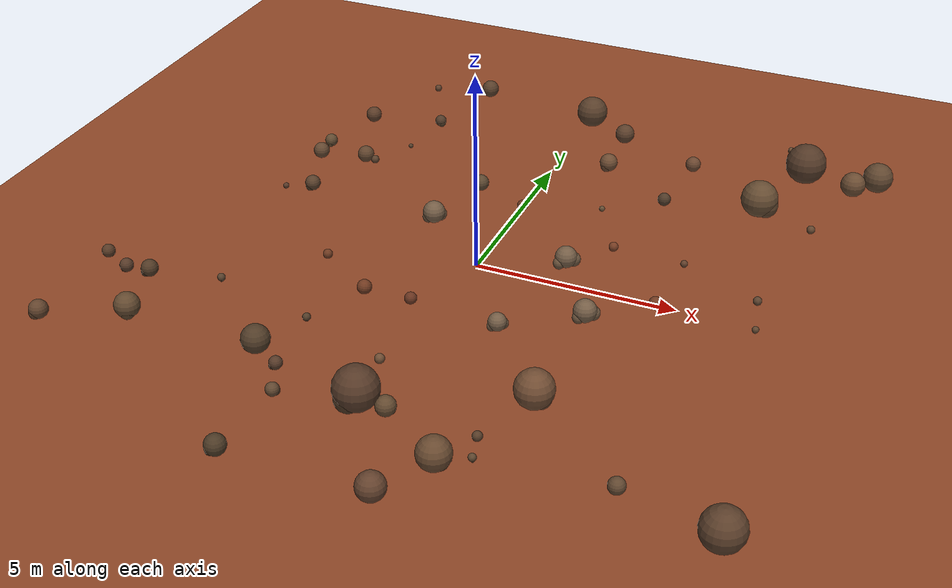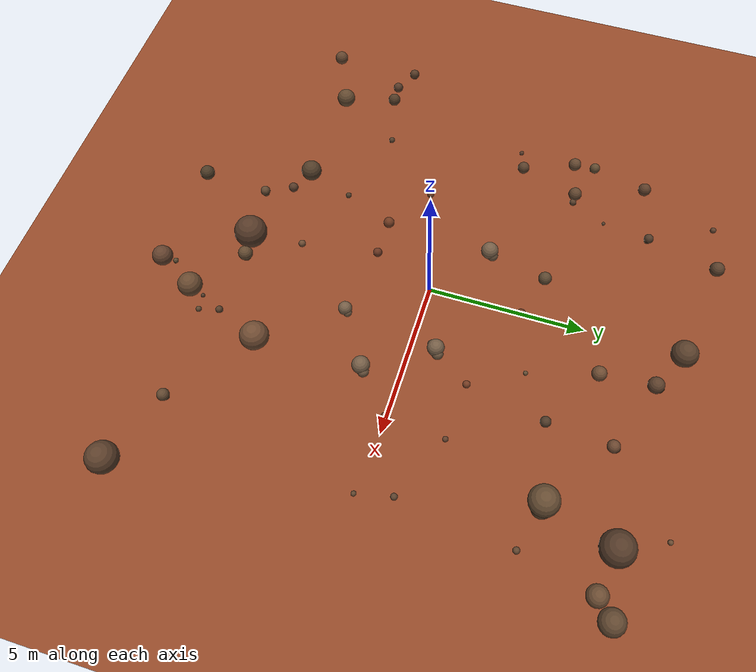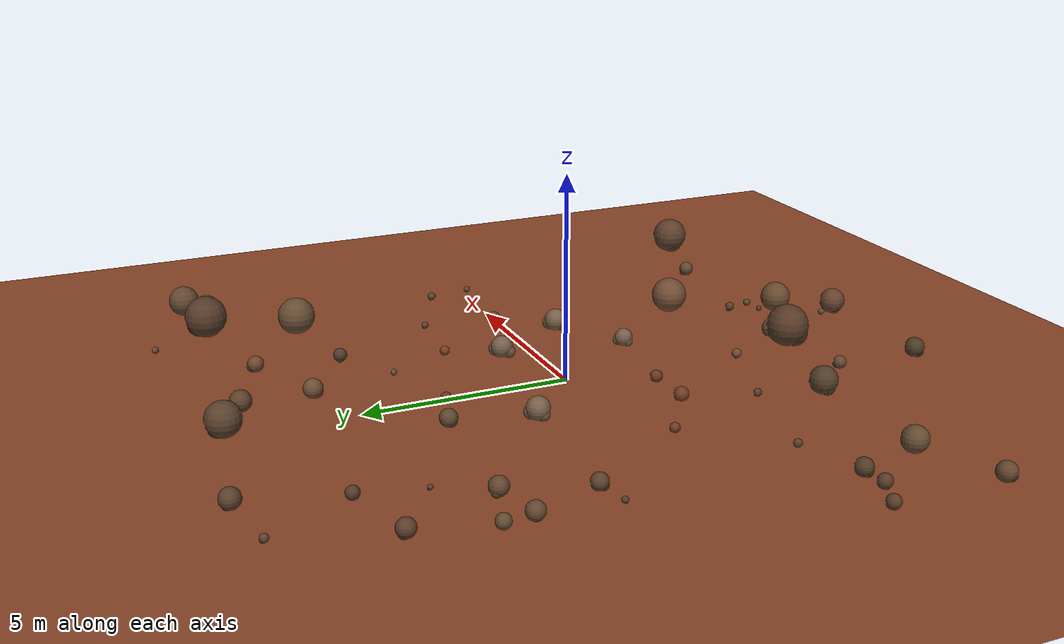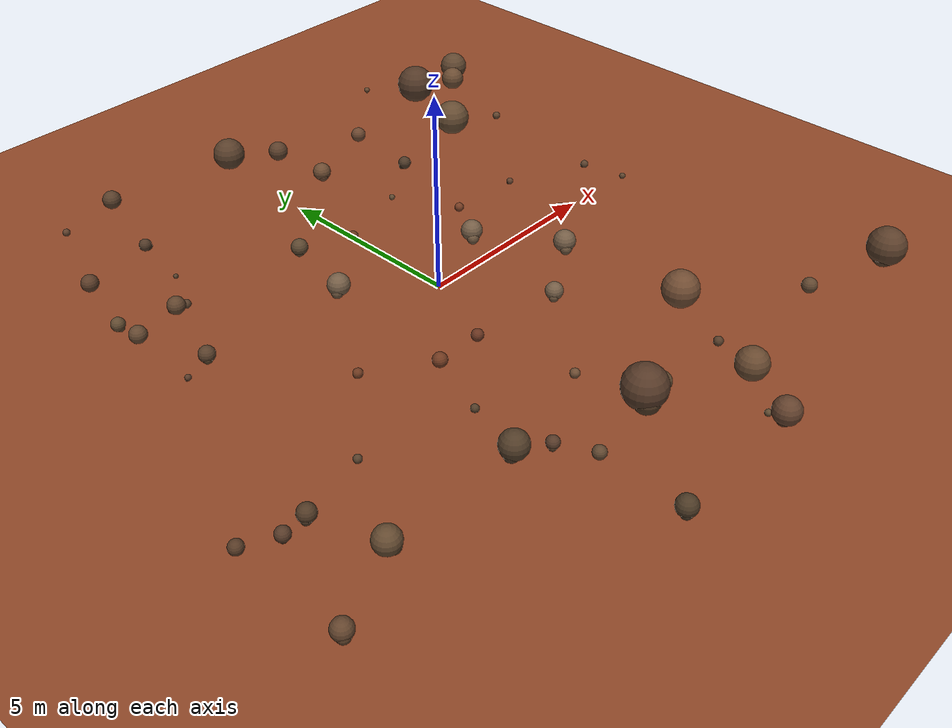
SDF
<?xml version="1.0" ?>
<sdf version="1.9">
  <world name="scenario_base">

    <physics name="1ms" type="ignored">
      <max_step_size>0.001</max_step_size>
      <real_time_factor>1.0</real_time_factor>
    </physics>

    <!-- Sistemi di simulazione necessari -->
    <plugin filename="gz-sim-physics-system" name="gz::sim::systems::Physics"/>
    <plugin filename="gz-sim-user-commands-system" name="gz::sim::systems::UserCommands"/>
    <plugin filename="gz-sim-scene-broadcaster-system" name="gz::sim::systems::SceneBroadcaster"/>
    <plugin filename="gz-sim-contact-system" name="gz::sim::systems::Contact"/>

    <!-- Necessario per il funzionamento di LiDAR e camera -->
    <plugin filename="gz-sim-sensors-system" name="gz::sim::systems::Sensors">
      <render_engine>ogre2</render_engine>
    </plugin>

    <gravity>0 0 -9.8</gravity>

    <light type="directional" name="sun">
      <cast_shadows>true</cast_shadows>
      <pose>0 0 10 0 0 0</pose>
      <diffuse>0.8 0.8 0.8 1</diffuse>
      <specular>0.2 0.2 0.2 1</specular>
      <attenuation>
        <range>1000</range>
        <constant>0.9</constant>
        <linear>0.01</linear>
        <quadratic>0.001</quadratic>
      </attenuation>
      <direction>-0.5 0.1 -0.9</direction>
    </light>

    <model name="ground_plane">
      <static>true</static>
      <link name="link">
        <collision name="collision">
          <geometry>
            <plane>
              <normal>0 0 1</normal>
              <size>100 100</size>
            </plane>
          </geometry>
          <surface>
            <friction>
              <ode>
                <mu>0.8</mu>
                <mu2>0.8</mu2>
              </ode>
            </friction>
          </surface>
        </collision>
        <visual name="visual">
          <geometry>
            <plane>
              <normal>0 0 1</normal>
              <size>100 100</size>
            </plane>
          </geometry>
          <material>
            <ambient>0.45 0.22 0.12 1</ambient>
            <diffuse>0.55 0.27 0.15 1</diffuse>
            <specular>0.1 0.1 0.1 1</specular>
          </material>
        </visual>
      </link>
    </model>

    <model name="roccia_1">
      <static>true</static>
      <pose>-0.8 -2.0 0.08 0.3 0.1 0.5</pose>
      <link name="link">
        <collision name="collision">
          <geometry><sphere><radius>0.15</radius></sphere></geometry>
        </collision>
        <visual name="visual">
          <geometry><sphere><radius>0.15</radius></sphere></geometry>
          <material>
            <ambient>0.35 0.18 0.1 1</ambient>
            <diffuse>0.4 0.2 0.12 1</diffuse>
          </material>
        </visual>
      </link>
    </model>

    <model name="roccia_2">
      <static>true</static>
      <pose>2.8 2.0 0.06 0.1 0.4 1.2</pose>
      <link name="link">
        <collision name="collision">
          <geometry><sphere><radius>0.12</radius></sphere></geometry>
        </collision>
        <visual name="visual">
          <geometry><sphere><radius>0.12</radius></sphere></geometry>
          <material>
            <ambient>0.4 0.2 0.11 1</ambient>
            <diffuse>0.45 0.23 0.13 1</diffuse>
          </material>
        </visual>
      </link>
    </model>

    <model name="roccia_3">
      <static>true</static>
      <pose>-2.0 -2.0 0.09 0.2 0.2 2.1</pose>
      <link name="link">
        <collision name="collision">
          <geometry><sphere><radius>0.18</radius></sphere></geometry>
        </collision>
        <visual name="visual">
          <geometry><sphere><radius>0.18</radius></sphere></geometry>
          <material>
            <ambient>0.38 0.19 0.1 1</ambient>
            <diffuse>0.43 0.22 0.12 1</diffuse>
          </material>
        </visual>
      </link>
    </model>

    <model name="roccia_4">
      <static>true</static>
      <pose>0.0 3.0 0.07 0.4 0.1 0.8</pose>
      <link name="link">
        <collision name="collision">
          <geometry><sphere><radius>0.14</radius></sphere></geometry>
        </collision>
        <visual name="visual">
          <geometry><sphere><radius>0.14</radius></sphere></geometry>
          <material>
            <ambient>0.36 0.18 0.09 1</ambient>
            <diffuse>0.41 0.21 0.11 1</diffuse>
          </material>
        </visual>
      </link>
    </model>

    <model name="roccia_5">
      <static>true</static>
      <pose>4.5 0.0 0.08 0.1 0.3 1.7</pose>
      <link name="link">
        <collision name="collision">
          <geometry><sphere><radius>0.16</radius></sphere></geometry>
        </collision>
        <visual name="visual">
          <geometry><sphere><radius>0.16</radius></sphere></geometry>
          <material>
            <ambient>0.39 0.2 0.11 1</ambient>
            <diffuse>0.44 0.23 0.13 1</diffuse>
          </material>
        </visual>
      </link>
    </model>

    <model name="roccia_6">
      <static>true</static>
      <pose>-3.5 -1.0 0.06 0.3 0.2 0.4</pose>
      <link name="link">
        <collision name="collision">
          <geometry><sphere><radius>0.12</radius></sphere></geometry>
        </collision>
        <visual name="visual">
          <geometry><sphere><radius>0.12</radius></sphere></geometry>
          <material>
            <ambient>0.37 0.19 0.1 1</ambient>
            <diffuse>0.42 0.22 0.12 1</diffuse>
          </material>
        </visual>
      </link>
    </model>

    <model name="ostacolo_blocco_1">
      <static>true</static>
      <pose>2.0 0.8 0.25 0 0 0</pose>
      <link name="link">
        <collision name="collision">
          <geometry>
            <box><size>0.5 0.5 0.5</size></box>
          </geometry>
        </collision>
        <visual name="visual_masso_a">
          <pose>0 0 0.02 0 0 0</pose>
          <geometry><sphere><radius>0.27</radius></sphere></geometry>
          <material><ambient>0.4 0.32 0.24 1</ambient><diffuse>0.45 0.36 0.27 1</diffuse></material>
        </visual>
        <visual name="visual_masso_b">
          <pose>0.15 0.1 -0.07 0 0 0</pose>
          <geometry><sphere><radius>0.18</radius></sphere></geometry>
          <material><ambient>0.37 0.29 0.21 1</ambient><diffuse>0.42 0.33 0.24 1</diffuse></material>
        </visual>
        <visual name="visual_masso_c">
          <pose>-0.12 -0.15 -0.10 0 0 0</pose>
          <geometry><sphere><radius>0.15</radius></sphere></geometry>
          <material><ambient>0.35 0.27 0.19 1</ambient><diffuse>0.4 0.31 0.22 1</diffuse></material>
        </visual>
      </link>
    </model>

    <model name="ostacolo_blocco_2">
      <static>true</static>
      <pose>3.2 -1.2 0.25 0 0 0.4</pose>
      <link name="link">
        <collision name="collision">
          <geometry>
            <box><size>0.6 0.4 0.5</size></box>
          </geometry>
        </collision>
        <visual name="visual_masso_a">
          <pose>0 0 0.03 0 0 0</pose>
          <geometry><sphere><radius>0.28</radius></sphere></geometry>
          <material><ambient>0.4 0.32 0.24 1</ambient><diffuse>0.45 0.36 0.27 1</diffuse></material>
        </visual>
        <visual name="visual_masso_b">
          <pose>0.18 0.05 -0.07 0 0 0</pose>
          <geometry><sphere><radius>0.18</radius></sphere></geometry>
          <material><ambient>0.37 0.29 0.21 1</ambient><diffuse>0.42 0.33 0.24 1</diffuse></material>
        </visual>
        <visual name="visual_masso_c">
          <pose>-0.15 -0.08 -0.10 0 0 0</pose>
          <geometry><sphere><radius>0.15</radius></sphere></geometry>
          <material><ambient>0.35 0.27 0.19 1</ambient><diffuse>0.4 0.31 0.22 1</diffuse></material>
        </visual>
      </link>
    </model>

    <model name="ostacolo_cilindro_1">
      <static>true</static>
      <pose>-1.8 1.5 0.3 0 0 0</pose>
      <link name="link">
        <collision name="collision">
          <geometry>
            <cylinder><radius>0.25</radius><length>0.6</length></cylinder>
          </geometry>
        </collision>
        <visual name="visual_masso_a">
          <pose>0 0 -0.02 0 0 0</pose>
          <geometry><sphere><radius>0.28</radius></sphere></geometry>
          <material><ambient>0.4 0.32 0.24 1</ambient><diffuse>0.45 0.36 0.27 1</diffuse></material>
        </visual>
        <visual name="visual_masso_b">
          <pose>0.1 0.12 -0.12 0 0 0</pose>
          <geometry><sphere><radius>0.18</radius></sphere></geometry>
          <material><ambient>0.37 0.29 0.21 1</ambient><diffuse>0.42 0.33 0.24 1</diffuse></material>
        </visual>
        <visual name="visual_masso_c">
          <pose>-0.12 -0.08 -0.15 0 0 0</pose>
          <geometry><sphere><radius>0.15</radius></sphere></geometry>
          <material><ambient>0.35 0.27 0.19 1</ambient><diffuse>0.4 0.31 0.22 1</diffuse></material>
        </visual>
      </link>
    </model>

    <model name="ostacolo_cilindro_2">
      <static>true</static>
      <pose>1.5 -2.3 0.3 0 0 0</pose>
      <link name="link">
        <collision name="collision">
          <geometry>
            <cylinder><radius>0.2</radius><length>0.6</length></cylinder>
          </geometry>
        </collision>
        <visual name="visual_masso_a">
          <pose>0 0 -0.08 0 0 0</pose>
          <geometry><sphere><radius>0.22</radius></sphere></geometry>
          <material><ambient>0.4 0.32 0.24 1</ambient><diffuse>0.45 0.36 0.27 1</diffuse></material>
        </visual>
        <visual name="visual_masso_b">
          <pose>0.09 0.1 -0.16 0 0 0</pose>
          <geometry><sphere><radius>0.14</radius></sphere></geometry>
          <material><ambient>0.37 0.29 0.21 1</ambient><diffuse>0.42 0.33 0.24 1</diffuse></material>
        </visual>
        <visual name="visual_masso_c">
          <pose>-0.1 -0.07 -0.18 0 0 0</pose>
          <geometry><sphere><radius>0.12</radius></sphere></geometry>
          <material><ambient>0.35 0.27 0.19 1</ambient><diffuse>0.4 0.31 0.22 1</diffuse></material>
        </visual>
      </link>
    </model>

    <model name="roccia_gen_1">
      <static>true</static>
      <pose>-6.03 3.42 0 0 0 3.17</pose>
      <link name="link">
        <collision name="collision">
          <pose>0 0 0.212 0 0 0</pose>
          <geometry><sphere><radius>0.223</radius></sphere></geometry>
        </collision>
        <visual name="visual_a">
          <pose>0 0 0.212 0 0 0</pose>
          <geometry><sphere><radius>0.212</radius></sphere></geometry>
          <material><ambient>0.33 0.25 0.16 1</ambient><diffuse>0.38 0.27 0.18 1</diffuse></material>
        </visual>
        <visual name="visual_b">
          <pose>0.053 0 0.115 0 0 0</pose>
          <geometry><sphere><radius>0.115</radius></sphere></geometry>
          <material><ambient>0.30 0.23 0.15 1</ambient><diffuse>0.35 0.25 0.16 1</diffuse></material>
        </visual>
      </link>
    </model>
    <model name="roccia_gen_2">
      <static>true</static>
      <pose>-8.39 -3.08 0 0 0 0.56</pose>
      <link name="link">
        <collision name="collision">
          <pose>0 0 0.165 0 0 0</pose>
          <geometry><sphere><radius>0.173</radius></sphere></geometry>
        </collision>
        <visual name="visual_a">
          <pose>0 0 0.165 0 0 0</pose>
          <geometry><sphere><radius>0.165</radius></sphere></geometry>
          <material><ambient>0.28 0.20 0.13 1</ambient><diffuse>0.33 0.22 0.14 1</diffuse></material>
        </visual>
        <visual name="visual_b">
          <pose>0.042 0 0.107 0 0 0</pose>
          <geometry><sphere><radius>0.107</radius></sphere></geometry>
          <material><ambient>0.25 0.19 0.12 1</ambient><diffuse>0.30 0.20 0.13 1</diffuse></material>
        </visual>
      </link>
    </model>
    <model name="roccia_gen_3">
      <static>true</static>
      <pose>-6.1 4.11 0 0 0 4.9</pose>
      <link name="link">
        <collision name="collision">
          <pose>0 0 0.17 0 0 0</pose>
          <geometry><sphere><radius>0.179</radius></sphere></geometry>
        </collision>
        <visual name="visual_a">
          <pose>0 0 0.17 0 0 0</pose>
          <geometry><sphere><radius>0.17</radius></sphere></geometry>
          <material><ambient>0.32 0.25 0.16 1</ambient><diffuse>0.37 0.28 0.18 1</diffuse></material>
        </visual>
        <visual name="visual_b">
          <pose>0.075 0 0.091 0 0 0</pose>
          <geometry><sphere><radius>0.091</radius></sphere></geometry>
          <material><ambient>0.29 0.24 0.15 1</ambient><diffuse>0.34 0.26 0.16 1</diffuse></material>
        </visual>
      </link>
    </model>
    <model name="roccia_gen_4">
      <static>true</static>
      <pose>7.09 4.59 0 0 0 2.44</pose>
      <link name="link">
        <collision name="collision">
          <pose>0 0 0.106 0 0 0</pose>
          <geometry><sphere><radius>0.111</radius></sphere></geometry>
        </collision>
        <visual name="visual_a">
          <pose>0 0 0.106 0 0 0</pose>
          <geometry><sphere><radius>0.106</radius></sphere></geometry>
          <material><ambient>0.32 0.24 0.15 1</ambient><diffuse>0.37 0.26 0.17 1</diffuse></material>
        </visual>
        <visual name="visual_b">
          <pose>0.03 0 0.06 0 0 0</pose>
          <geometry><sphere><radius>0.06</radius></sphere></geometry>
          <material><ambient>0.29 0.22 0.14 1</ambient><diffuse>0.34 0.24 0.15 1</diffuse></material>
        </visual>
      </link>
    </model>
    <model name="roccia_gen_5">
      <static>true</static>
      <pose>-2.04 -8.52 0 0 0 3.76</pose>
      <link name="link">
        <collision name="collision">
          <pose>0 0 0.243 0 0 0</pose>
          <geometry><sphere><radius>0.255</radius></sphere></geometry>
        </collision>
        <visual name="visual_a">
          <pose>0 0 0.243 0 0 0</pose>
          <geometry><sphere><radius>0.243</radius></sphere></geometry>
          <material><ambient>0.24 0.20 0.13 1</ambient><diffuse>0.29 0.22 0.14 1</diffuse></material>
        </visual>
        <visual name="visual_b">
          <pose>0.089 0 0.144 0 0 0</pose>
          <geometry><sphere><radius>0.144</radius></sphere></geometry>
          <material><ambient>0.21 0.19 0.12 1</ambient><diffuse>0.26 0.20 0.13 1</diffuse></material>
        </visual>
      </link>
    </model>
    <model name="roccia_gen_6">
      <static>true</static>
      <pose>-3.26 8.64 0 0 0 1.93</pose>
      <link name="link">
        <collision name="collision">
          <pose>0 0 0.237 0 0 0</pose>
          <geometry><sphere><radius>0.249</radius></sphere></geometry>
        </collision>
        <visual name="visual_a">
          <pose>0 0 0.237 0 0 0</pose>
          <geometry><sphere><radius>0.237</radius></sphere></geometry>
          <material><ambient>0.29 0.22 0.14 1</ambient><diffuse>0.34 0.24 0.16 1</diffuse></material>
        </visual>
        <visual name="visual_b">
          <pose>0.062 0 0.123 0 0 0</pose>
          <geometry><sphere><radius>0.123</radius></sphere></geometry>
          <material><ambient>0.26 0.20 0.13 1</ambient><diffuse>0.31 0.22 0.14 1</diffuse></material>
        </visual>
      </link>
    </model>
    <model name="roccia_gen_7">
      <static>true</static>
      <pose>5.65 4.99 0 0 0 6.21</pose>
      <link name="link">
        <collision name="collision">
          <pose>0 0 0.469 0 0 0</pose>
          <geometry><sphere><radius>0.513</radius></sphere></geometry>
        </collision>
        <visual name="visual_a">
          <pose>0 0 0.469 0 0 0</pose>
          <geometry><sphere><radius>0.469</radius></sphere></geometry>
          <material><ambient>0.34 0.26 0.17 1</ambient><diffuse>0.39 0.29 0.19 1</diffuse></material>
        </visual>
        <visual name="visual_b">
          <pose>0.173 0 0.316 0 0 0</pose>
          <geometry><sphere><radius>0.316</radius></sphere></geometry>
          <material><ambient>0.31 0.24 0.16 1</ambient><diffuse>0.36 0.26 0.17 1</diffuse></material>
        </visual>
      </link>
    </model>
    <model name="roccia_gen_8">
      <static>true</static>
      <pose>6.9 -0.16 0 0 0 2.56</pose>
      <link name="link">
        <collision name="collision">
          <pose>0 0 0.083 0 0 0</pose>
          <geometry><sphere><radius>0.087</radius></sphere></geometry>
        </collision>
        <visual name="visual_a">
          <pose>0 0 0.083 0 0 0</pose>
          <geometry><sphere><radius>0.083</radius></sphere></geometry>
          <material><ambient>0.31 0.24 0.15 1</ambient><diffuse>0.36 0.26 0.17 1</diffuse></material>
        </visual>
        <visual name="visual_b">
          <pose>0.022 0 0.053 0 0 0</pose>
          <geometry><sphere><radius>0.053</radius></sphere></geometry>
          <material><ambient>0.28 0.22 0.14 1</ambient><diffuse>0.33 0.24 0.15 1</diffuse></material>
        </visual>
      </link>
    </model>
    <model name="roccia_gen_9">
      <static>true</static>
      <pose>-3.82 6.36 0 0 0 5.65</pose>
      <link name="link">
        <collision name="collision">
          <pose>0 0 0.155 0 0 0</pose>
          <geometry><sphere><radius>0.175</radius></sphere></geometry>
        </collision>
        <visual name="visual_a">
          <pose>0 0 0.155 0 0 0</pose>
          <geometry><sphere><radius>0.155</radius></sphere></geometry>
          <material><ambient>0.26 0.20 0.13 1</ambient><diffuse>0.31 0.22 0.15 1</diffuse></material>
        </visual>
        <visual name="visual_b">
          <pose>0.062 0 0.105 0 0 0</pose>
          <geometry><sphere><radius>0.105</radius></sphere></geometry>
          <material><ambient>0.23 0.19 0.12 1</ambient><diffuse>0.28 0.21 0.13 1</diffuse></material>
        </visual>
      </link>
    </model>
    <model name="roccia_gen_10">
      <static>true</static>
      <pose>-0.38 -4.46 0 0 0 2.3</pose>
      <link name="link">
        <collision name="collision">
          <pose>0 0 0.118 0 0 0</pose>
          <geometry><sphere><radius>0.124</radius></sphere></geometry>
        </collision>
        <visual name="visual_a">
          <pose>0 0 0.118 0 0 0</pose>
          <geometry><sphere><radius>0.118</radius></sphere></geometry>
          <material><ambient>0.37 0.26 0.17 1</ambient><diffuse>0.42 0.29 0.19 1</diffuse></material>
        </visual>
        <visual name="visual_b">
          <pose>0.038 0 0.062 0 0 0</pose>
          <geometry><sphere><radius>0.062</radius></sphere></geometry>
          <material><ambient>0.34 0.24 0.16 1</ambient><diffuse>0.39 0.26 0.17 1</diffuse></material>
        </visual>
      </link>
    </model>
    <model name="roccia_gen_11">
      <static>true</static>
      <pose>-4.03 4.83 0 0 0 1.57</pose>
      <link name="link">
        <collision name="collision">
          <pose>0 0 0.061 0 0 0</pose>
          <geometry><sphere><radius>0.064</radius></sphere></geometry>
        </collision>
        <visual name="visual_a">
          <pose>0 0 0.061 0 0 0</pose>
          <geometry><sphere><radius>0.061</radius></sphere></geometry>
          <material><ambient>0.28 0.22 0.14 1</ambient><diffuse>0.33 0.24 0.16 1</diffuse></material>
        </visual>
        <visual name="visual_b">
          <pose>0.02 0 0.041 0 0 0</pose>
          <geometry><sphere><radius>0.041</radius></sphere></geometry>
          <material><ambient>0.25 0.20 0.13 1</ambient><diffuse>0.30 0.22 0.14 1</diffuse></material>
        </visual>
      </link>
    </model>
    <model name="roccia_gen_12">
      <static>true</static>
      <pose>3.3 4.53 0 0 0 2.81</pose>
      <link name="link">
        <collision name="collision">
          <pose>0 0 0.168 0 0 0</pose>
          <geometry><sphere><radius>0.176</radius></sphere></geometry>
        </collision>
        <visual name="visual_a">
          <pose>0 0 0.168 0 0 0</pose>
          <geometry><sphere><radius>0.168</radius></sphere></geometry>
          <material><ambient>0.25 0.20 0.13 1</ambient><diffuse>0.30 0.22 0.15 1</diffuse></material>
        </visual>
        <visual name="visual_b">
          <pose>0.071 0 0.088 0 0 0</pose>
          <geometry><sphere><radius>0.088</radius></sphere></geometry>
          <material><ambient>0.22 0.19 0.12 1</ambient><diffuse>0.27 0.21 0.13 1</diffuse></material>
        </visual>
      </link>
    </model>
    <model name="roccia_gen_13">
      <static>true</static>
      <pose>2.8 -6.72 0 0 0 5.39</pose>
      <link name="link">
        <collision name="collision">
          <pose>0 0 0.092 0 0 0</pose>
          <geometry><sphere><radius>0.097</radius></sphere></geometry>
        </collision>
        <visual name="visual_a">
          <pose>0 0 0.092 0 0 0</pose>
          <geometry><sphere><radius>0.092</radius></sphere></geometry>
          <material><ambient>0.3 0.24 0.15 1</ambient><diffuse>0.35 0.26 0.17 1</diffuse></material>
        </visual>
        <visual name="visual_b">
          <pose>0.037 0 0.049 0 0 0</pose>
          <geometry><sphere><radius>0.049</radius></sphere></geometry>
          <material><ambient>0.27 0.22 0.14 1</ambient><diffuse>0.32 0.24 0.15 1</diffuse></material>
        </visual>
      </link>
    </model>
    <model name="roccia_gen_14">
      <static>true</static>
      <pose>4.63 1.87 0 0 0 2.5</pose>
      <link name="link">
        <collision name="collision">
          <pose>0 0 0.09 0 0 0</pose>
          <geometry><sphere><radius>0.097</radius></sphere></geometry>
        </collision>
        <visual name="visual_a">
          <pose>0 0 0.09 0 0 0</pose>
          <geometry><sphere><radius>0.09</radius></sphere></geometry>
          <material><ambient>0.32 0.22 0.14 1</ambient><diffuse>0.37 0.24 0.16 1</diffuse></material>
        </visual>
        <visual name="visual_b">
          <pose>0.038 0 0.054 0 0 0</pose>
          <geometry><sphere><radius>0.054</radius></sphere></geometry>
          <material><ambient>0.29 0.21 0.13 1</ambient><diffuse>0.34 0.23 0.14 1</diffuse></material>
        </visual>
      </link>
    </model>
    <model name="roccia_gen_15">
      <static>true</static>
      <pose>-4.8 8.35 0 0 0 1.85</pose>
      <link name="link">
        <collision name="collision">
          <pose>0 0 0.096 0 0 0</pose>
          <geometry><sphere><radius>0.101</radius></sphere></geometry>
        </collision>
        <visual name="visual_a">
          <pose>0 0 0.096 0 0 0</pose>
          <geometry><sphere><radius>0.096</radius></sphere></geometry>
          <material><ambient>0.31 0.22 0.14 1</ambient><diffuse>0.36 0.24 0.16 1</diffuse></material>
        </visual>
        <visual name="visual_b">
          <pose>0.035 0 0.057 0 0 0</pose>
          <geometry><sphere><radius>0.057</radius></sphere></geometry>
          <material><ambient>0.28 0.20 0.13 1</ambient><diffuse>0.33 0.22 0.14 1</diffuse></material>
        </visual>
      </link>
    </model>
    <model name="roccia_gen_16">
      <static>true</static>
      <pose>8.07 -7.23 0 0 0 3.3</pose>
      <link name="link">
        <collision name="collision">
          <pose>0 0 0.484 0 0 0</pose>
          <geometry><sphere><radius>0.508</radius></sphere></geometry>
        </collision>
        <visual name="visual_a">
          <pose>0 0 0.484 0 0 0</pose>
          <geometry><sphere><radius>0.484</radius></sphere></geometry>
          <material><ambient>0.3 0.22 0.14 1</ambient><diffuse>0.35 0.24 0.16 1</diffuse></material>
        </visual>
        <visual name="visual_b">
          <pose>0.127 0 0.291 0 0 0</pose>
          <geometry><sphere><radius>0.291</radius></sphere></geometry>
          <material><ambient>0.27 0.20 0.13 1</ambient><diffuse>0.32 0.22 0.14 1</diffuse></material>
        </visual>
      </link>
    </model>
    <model name="roccia_gen_17">
      <static>true</static>
      <pose>5.66 8.58 0 0 0 3.93</pose>
      <link name="link">
        <collision name="collision">
          <pose>0 0 0.081 0 0 0</pose>
          <geometry><sphere><radius>0.092</radius></sphere></geometry>
        </collision>
        <visual name="visual_a">
          <pose>0 0 0.081 0 0 0</pose>
          <geometry><sphere><radius>0.081</radius></sphere></geometry>
          <material><ambient>0.35 0.25 0.16 1</ambient><diffuse>0.40 0.28 0.18 1</diffuse></material>
        </visual>
        <visual name="visual_b">
          <pose>0.036 0 0.052 0 0 0</pose>
          <geometry><sphere><radius>0.052</radius></sphere></geometry>
          <material><ambient>0.32 0.24 0.15 1</ambient><diffuse>0.37 0.26 0.16 1</diffuse></material>
        </visual>
      </link>
    </model>
    <model name="roccia_gen_18">
      <static>true</static>
      <pose>0.09 8.05 0 0 0 1.42</pose>
      <link name="link">
        <collision name="collision">
          <pose>0 0 0.418 0 0 0</pose>
          <geometry><sphere><radius>0.439</radius></sphere></geometry>
        </collision>
        <visual name="visual_a">
          <pose>0 0 0.418 0 0 0</pose>
          <geometry><sphere><radius>0.418</radius></sphere></geometry>
          <material><ambient>0.29 0.22 0.14 1</ambient><diffuse>0.34 0.24 0.16 1</diffuse></material>
        </visual>
        <visual name="visual_b">
          <pose>0.141 0 0.213 0 0 0</pose>
          <geometry><sphere><radius>0.213</radius></sphere></geometry>
          <material><ambient>0.26 0.21 0.13 1</ambient><diffuse>0.31 0.23 0.14 1</diffuse></material>
        </visual>
      </link>
    </model>
    <model name="roccia_gen_19">
      <static>true</static>
      <pose>-4.55 3.68 0 0 0 1.43</pose>
      <link name="link">
        <collision name="collision">
          <pose>0 0 0.109 0 0 0</pose>
          <geometry><sphere><radius>0.12</radius></sphere></geometry>
        </collision>
        <visual name="visual_a">
          <pose>0 0 0.109 0 0 0</pose>
          <geometry><sphere><radius>0.109</radius></sphere></geometry>
          <material><ambient>0.29 0.22 0.14 1</ambient><diffuse>0.34 0.24 0.16 1</diffuse></material>
        </visual>
        <visual name="visual_b">
          <pose>0.042 0 0.072 0 0 0</pose>
          <geometry><sphere><radius>0.072</radius></sphere></geometry>
          <material><ambient>0.26 0.21 0.13 1</ambient><diffuse>0.31 0.23 0.14 1</diffuse></material>
        </visual>
      </link>
    </model>
    <model name="roccia_gen_20">
      <static>true</static>
      <pose>-8.33 -5.89 0 0 0 4.2</pose>
      <link name="link">
        <collision name="collision">
          <pose>0 0 0.229 0 0 0</pose>
          <geometry><sphere><radius>0.251</radius></sphere></geometry>
        </collision>
        <visual name="visual_a">
          <pose>0 0 0.229 0 0 0</pose>
          <geometry><sphere><radius>0.229</radius></sphere></geometry>
          <material><ambient>0.33 0.24 0.15 1</ambient><diffuse>0.38 0.26 0.17 1</diffuse></material>
        </visual>
        <visual name="visual_b">
          <pose>0.089 0 0.15 0 0 0</pose>
          <geometry><sphere><radius>0.15</radius></sphere></geometry>
          <material><ambient>0.30 0.22 0.14 1</ambient><diffuse>0.35 0.24 0.15 1</diffuse></material>
        </visual>
      </link>
    </model>
    <model name="roccia_gen_21">
      <static>true</static>
      <pose>3.29 -4.58 0 0 0 0.04</pose>
      <link name="link">
        <collision name="collision">
          <pose>0 0 0.454 0 0 0</pose>
          <geometry><sphere><radius>0.477</radius></sphere></geometry>
        </collision>
        <visual name="visual_a">
          <pose>0 0 0.454 0 0 0</pose>
          <geometry><sphere><radius>0.454</radius></sphere></geometry>
          <material><ambient>0.38 0.26 0.17 1</ambient><diffuse>0.43 0.29 0.19 1</diffuse></material>
        </visual>
        <visual name="visual_b">
          <pose>0.142 0 0.253 0 0 0</pose>
          <geometry><sphere><radius>0.253</radius></sphere></geometry>
          <material><ambient>0.35 0.24 0.16 1</ambient><diffuse>0.40 0.26 0.17 1</diffuse></material>
        </visual>
      </link>
    </model>
    <model name="roccia_gen_22">
      <static>true</static>
      <pose>-1.96 -6.38 0 0 0 0.68</pose>
      <link name="link">
        <collision name="collision">
          <pose>0 0 0.16 0 0 0</pose>
          <geometry><sphere><radius>0.18</radius></sphere></geometry>
        </collision>
        <visual name="visual_a">
          <pose>0 0 0.16 0 0 0</pose>
          <geometry><sphere><radius>0.16</radius></sphere></geometry>
          <material><ambient>0.32 0.24 0.16 1</ambient><diffuse>0.37 0.27 0.18 1</diffuse></material>
        </visual>
        <visual name="visual_b">
          <pose>0.063 0 0.108 0 0 0</pose>
          <geometry><sphere><radius>0.108</radius></sphere></geometry>
          <material><ambient>0.29 0.23 0.14 1</ambient><diffuse>0.34 0.25 0.16 1</diffuse></material>
        </visual>
      </link>
    </model>
    <model name="roccia_gen_23">
      <static>true</static>
      <pose>-5.3 -2.96 0 0 0 5.31</pose>
      <link name="link">
        <collision name="collision">
          <pose>0 0 0.098 0 0 0</pose>
          <geometry><sphere><radius>0.103</radius></sphere></geometry>
        </collision>
        <visual name="visual_a">
          <pose>0 0 0.098 0 0 0</pose>
          <geometry><sphere><radius>0.098</radius></sphere></geometry>
          <material><ambient>0.28 0.22 0.14 1</ambient><diffuse>0.33 0.24 0.16 1</diffuse></material>
        </visual>
        <visual name="visual_b">
          <pose>0.038 0 0.052 0 0 0</pose>
          <geometry><sphere><radius>0.052</radius></sphere></geometry>
          <material><ambient>0.25 0.20 0.13 1</ambient><diffuse>0.30 0.22 0.14 1</diffuse></material>
        </visual>
      </link>
    </model>
    <model name="roccia_gen_24">
      <static>true</static>
      <pose>-5.4 1.76 0 0 0 4.18</pose>
      <link name="link">
        <collision name="collision">
          <pose>0 0 0.199 0 0 0</pose>
          <geometry><sphere><radius>0.209</radius></sphere></geometry>
        </collision>
        <visual name="visual_a">
          <pose>0 0 0.199 0 0 0</pose>
          <geometry><sphere><radius>0.199</radius></sphere></geometry>
          <material><ambient>0.29 0.22 0.14 1</ambient><diffuse>0.34 0.24 0.16 1</diffuse></material>
        </visual>
        <visual name="visual_b">
          <pose>0.076 0 0.123 0 0 0</pose>
          <geometry><sphere><radius>0.123</radius></sphere></geometry>
          <material><ambient>0.26 0.21 0.13 1</ambient><diffuse>0.31 0.23 0.14 1</diffuse></material>
        </visual>
      </link>
    </model>
    <model name="roccia_gen_25">
      <static>true</static>
      <pose>2.19 -7.22 0 0 0 0.12</pose>
      <link name="link">
        <collision name="collision">
          <pose>0 0 0.388 0 0 0</pose>
          <geometry><sphere><radius>0.407</radius></sphere></geometry>
        </collision>
        <visual name="visual_a">
          <pose>0 0 0.388 0 0 0</pose>
          <geometry><sphere><radius>0.388</radius></sphere></geometry>
          <material><ambient>0.35 0.25 0.16 1</ambient><diffuse>0.40 0.28 0.18 1</diffuse></material>
        </visual>
        <visual name="visual_b">
          <pose>0.1 0 0.229 0 0 0</pose>
          <geometry><sphere><radius>0.229</radius></sphere></geometry>
          <material><ambient>0.32 0.24 0.15 1</ambient><diffuse>0.37 0.26 0.16 1</diffuse></material>
        </visual>
      </link>
    </model>
    <model name="roccia_gen_26">
      <static>true</static>
      <pose>1.94 3.61 0 0 0 2.33</pose>
      <link name="link">
        <collision name="collision">
          <pose>0 0 0.074 0 0 0</pose>
          <geometry><sphere><radius>0.078</radius></sphere></geometry>
        </collision>
        <visual name="visual_a">
          <pose>0 0 0.074 0 0 0</pose>
          <geometry><sphere><radius>0.074</radius></sphere></geometry>
          <material><ambient>0.33 0.26 0.17 1</ambient><diffuse>0.38 0.29 0.19 1</diffuse></material>
        </visual>
        <visual name="visual_b">
          <pose>0.021 0 0.037 0 0 0</pose>
          <geometry><sphere><radius>0.037</radius></sphere></geometry>
          <material><ambient>0.30 0.24 0.16 1</ambient><diffuse>0.35 0.26 0.17 1</diffuse></material>
        </visual>
      </link>
    </model>
    <model name="roccia_gen_27">
      <static>true</static>
      <pose>1.27 7.42 0 0 0 1.41</pose>
      <link name="link">
        <collision name="collision">
          <pose>0 0 0.259 0 0 0</pose>
          <geometry><sphere><radius>0.289</radius></sphere></geometry>
        </collision>
        <visual name="visual_a">
          <pose>0 0 0.259 0 0 0</pose>
          <geometry><sphere><radius>0.259</radius></sphere></geometry>
          <material><ambient>0.3 0.22 0.14 1</ambient><diffuse>0.35 0.24 0.16 1</diffuse></material>
        </visual>
        <visual name="visual_b">
          <pose>0.108 0 0.167 0 0 0</pose>
          <geometry><sphere><radius>0.167</radius></sphere></geometry>
          <material><ambient>0.27 0.21 0.13 1</ambient><diffuse>0.32 0.23 0.14 1</diffuse></material>
        </visual>
      </link>
    </model>
    <model name="roccia_gen_28">
      <static>true</static>
      <pose>7.65 6.9 0 0 0 0.96</pose>
      <link name="link">
        <collision name="collision">
          <pose>0 0 0.32 0 0 0</pose>
          <geometry><sphere><radius>0.336</radius></sphere></geometry>
        </collision>
        <visual name="visual_a">
          <pose>0 0 0.32 0 0 0</pose>
          <geometry><sphere><radius>0.32</radius></sphere></geometry>
          <material><ambient>0.36 0.26 0.17 1</ambient><diffuse>0.41 0.29 0.19 1</diffuse></material>
        </visual>
        <visual name="visual_b">
          <pose>0.114 0 0.189 0 0 0</pose>
          <geometry><sphere><radius>0.189</radius></sphere></geometry>
          <material><ambient>0.33 0.24 0.16 1</ambient><diffuse>0.38 0.26 0.17 1</diffuse></material>
        </visual>
      </link>
    </model>
    <model name="roccia_gen_29">
      <static>true</static>
      <pose>-2.64 -3.64 0 0 0 5.2</pose>
      <link name="link">
        <collision name="collision">
          <pose>0 0 0.098 0 0 0</pose>
          <geometry><sphere><radius>0.103</radius></sphere></geometry>
        </collision>
        <visual name="visual_a">
          <pose>0 0 0.098 0 0 0</pose>
          <geometry><sphere><radius>0.098</radius></sphere></geometry>
          <material><ambient>0.26 0.21 0.14 1</ambient><diffuse>0.31 0.23 0.15 1</diffuse></material>
        </visual>
        <visual name="visual_b">
          <pose>0.031 0 0.055 0 0 0</pose>
          <geometry><sphere><radius>0.055</radius></sphere></geometry>
          <material><ambient>0.23 0.20 0.13 1</ambient><diffuse>0.28 0.21 0.14 1</diffuse></material>
        </visual>
      </link>
    </model>
    <model name="roccia_gen_30">
      <static>true</static>
      <pose>-6.08 1.54 0 0 0 3.38</pose>
      <link name="link">
        <collision name="collision">
          <pose>0 0 0.077 0 0 0</pose>
          <geometry><sphere><radius>0.081</radius></sphere></geometry>
        </collision>
        <visual name="visual_a">
          <pose>0 0 0.077 0 0 0</pose>
          <geometry><sphere><radius>0.077</radius></sphere></geometry>
          <material><ambient>0.29 0.20 0.13 1</ambient><diffuse>0.34 0.22 0.15 1</diffuse></material>
        </visual>
        <visual name="visual_b">
          <pose>0.03 0 0.044 0 0 0</pose>
          <geometry><sphere><radius>0.044</radius></sphere></geometry>
          <material><ambient>0.26 0.19 0.12 1</ambient><diffuse>0.31 0.21 0.13 1</diffuse></material>
        </visual>
      </link>
    </model>
    <model name="roccia_gen_31">
      <static>true</static>
      <pose>-0.11 -6.08 0 0 0 4.07</pose>
      <link name="link">
        <collision name="collision">
          <pose>0 0 0.527 0 0 0</pose>
          <geometry><sphere><radius>0.553</radius></sphere></geometry>
        </collision>
        <visual name="visual_a">
          <pose>0 0 0.527 0 0 0</pose>
          <geometry><sphere><radius>0.527</radius></sphere></geometry>
          <material><ambient>0.28 0.20 0.13 1</ambient><diffuse>0.33 0.22 0.15 1</diffuse></material>
        </visual>
        <visual name="visual_b">
          <pose>0.195 0 0.322 0 0 0</pose>
          <geometry><sphere><radius>0.322</radius></sphere></geometry>
          <material><ambient>0.25 0.19 0.12 1</ambient><diffuse>0.30 0.21 0.13 1</diffuse></material>
        </visual>
      </link>
    </model>
    <model name="roccia_gen_32">
      <static>true</static>
      <pose>-6.99 -3.41 0 0 0 3.85</pose>
      <link name="link">
        <collision name="collision">
          <pose>0 0 0.21 0 0 0</pose>
          <geometry><sphere><radius>0.223</radius></sphere></geometry>
        </collision>
        <visual name="visual_a">
          <pose>0 0 0.21 0 0 0</pose>
          <geometry><sphere><radius>0.21</radius></sphere></geometry>
          <material><ambient>0.26 0.20 0.13 1</ambient><diffuse>0.31 0.22 0.14 1</diffuse></material>
        </visual>
        <visual name="visual_b">
          <pose>0.084 0 0.128 0 0 0</pose>
          <geometry><sphere><radius>0.128</radius></sphere></geometry>
          <material><ambient>0.23 0.19 0.12 1</ambient><diffuse>0.28 0.20 0.13 1</diffuse></material>
        </visual>
      </link>
    </model>
    <model name="roccia_gen_33">
      <static>true</static>
      <pose>2.64 -6.09 0 0 0 1.8</pose>
      <link name="link">
        <collision name="collision">
          <pose>0 0 0.116 0 0 0</pose>
          <geometry><sphere><radius>0.122</radius></sphere></geometry>
        </collision>
        <visual name="visual_a">
          <pose>0 0 0.116 0 0 0</pose>
          <geometry><sphere><radius>0.116</radius></sphere></geometry>
          <material><ambient>0.28 0.21 0.14 1</ambient><diffuse>0.33 0.23 0.15 1</diffuse></material>
        </visual>
        <visual name="visual_b">
          <pose>0.047 0 0.067 0 0 0</pose>
          <geometry><sphere><radius>0.067</radius></sphere></geometry>
          <material><ambient>0.25 0.20 0.13 1</ambient><diffuse>0.30 0.21 0.14 1</diffuse></material>
        </visual>
      </link>
    </model>
    <model name="roccia_gen_34">
      <static>true</static>
      <pose>8.19 7.38 0 0 0 0.82</pose>
      <link name="link">
        <collision name="collision">
          <pose>0 0 0.388 0 0 0</pose>
          <geometry><sphere><radius>0.407</radius></sphere></geometry>
        </collision>
        <visual name="visual_a">
          <pose>0 0 0.388 0 0 0</pose>
          <geometry><sphere><radius>0.388</radius></sphere></geometry>
          <material><ambient>0.32 0.25 0.16 1</ambient><diffuse>0.37 0.27 0.18 1</diffuse></material>
        </visual>
        <visual name="visual_b">
          <pose>0.13 0 0.196 0 0 0</pose>
          <geometry><sphere><radius>0.196</radius></sphere></geometry>
          <material><ambient>0.29 0.23 0.15 1</ambient><diffuse>0.34 0.25 0.16 1</diffuse></material>
        </visual>
      </link>
    </model>
    <model name="roccia_gen_35">
      <static>true</static>
      <pose>1.45 -8.53 0 0 0 3.23</pose>
      <link name="link">
        <collision name="collision">
          <pose>0 0 0.327 0 0 0</pose>
          <geometry><sphere><radius>0.343</radius></sphere></geometry>
        </collision>
        <visual name="visual_a">
          <pose>0 0 0.327 0 0 0</pose>
          <geometry><sphere><radius>0.327</radius></sphere></geometry>
          <material><ambient>0.33 0.23 0.15 1</ambient><diffuse>0.38 0.25 0.17 1</diffuse></material>
        </visual>
        <visual name="visual_b">
          <pose>0.097 0 0.171 0 0 0</pose>
          <geometry><sphere><radius>0.171</radius></sphere></geometry>
          <material><ambient>0.30 0.21 0.14 1</ambient><diffuse>0.35 0.23 0.15 1</diffuse></material>
        </visual>
      </link>
    </model>
    <model name="roccia_gen_36">
      <static>true</static>
      <pose>-5.68 5.89 0 0 0 2.11</pose>
      <link name="link">
        <collision name="collision">
          <pose>0 0 0.212 0 0 0</pose>
          <geometry><sphere><radius>0.223</radius></sphere></geometry>
        </collision>
        <visual name="visual_a">
          <pose>0 0 0.212 0 0 0</pose>
          <geometry><sphere><radius>0.212</radius></sphere></geometry>
          <material><ambient>0.3 0.21 0.14 1</ambient><diffuse>0.35 0.23 0.15 1</diffuse></material>
        </visual>
        <visual name="visual_b">
          <pose>0.066 0 0.123 0 0 0</pose>
          <geometry><sphere><radius>0.123</radius></sphere></geometry>
          <material><ambient>0.27 0.20 0.13 1</ambient><diffuse>0.32 0.21 0.14 1</diffuse></material>
        </visual>
      </link>
    </model>
    <model name="roccia_gen_37">
      <static>true</static>
      <pose>-6.49 -5.06 0 0 0 5.23</pose>
      <link name="link">
        <collision name="collision">
          <pose>0 0 0.308 0 0 0</pose>
          <geometry><sphere><radius>0.323</radius></sphere></geometry>
        </collision>
        <visual name="visual_a">
          <pose>0 0 0.308 0 0 0</pose>
          <geometry><sphere><radius>0.308</radius></sphere></geometry>
          <material><ambient>0.33 0.25 0.16 1</ambient><diffuse>0.38 0.28 0.18 1</diffuse></material>
        </visual>
        <visual name="visual_b">
          <pose>0.107 0 0.179 0 0 0</pose>
          <geometry><sphere><radius>0.179</radius></sphere></geometry>
          <material><ambient>0.30 0.24 0.15 1</ambient><diffuse>0.35 0.26 0.16 1</diffuse></material>
        </visual>
      </link>
    </model>
    <model name="roccia_gen_38">
      <static>true</static>
      <pose>6.66 0.96 0 0 0 2.45</pose>
      <link name="link">
        <collision name="collision">
          <pose>0 0 0.106 0 0 0</pose>
          <geometry><sphere><radius>0.111</radius></sphere></geometry>
        </collision>
        <visual name="visual_a">
          <pose>0 0 0.106 0 0 0</pose>
          <geometry><sphere><radius>0.106</radius></sphere></geometry>
          <material><ambient>0.3 0.23 0.15 1</ambient><diffuse>0.35 0.25 0.17 1</diffuse></material>
        </visual>
        <visual name="visual_b">
          <pose>0.039 0 0.065 0 0 0</pose>
          <geometry><sphere><radius>0.065</radius></sphere></geometry>
          <material><ambient>0.27 0.21 0.14 1</ambient><diffuse>0.32 0.23 0.15 1</diffuse></material>
        </visual>
      </link>
    </model>
    <model name="roccia_gen_39">
      <static>true</static>
      <pose>3.47 6.57 0 0 0 1.25</pose>
      <link name="link">
        <collision name="collision">
          <pose>0 0 0.199 0 0 0</pose>
          <geometry><sphere><radius>0.226</radius></sphere></geometry>
        </collision>
        <visual name="visual_a">
          <pose>0 0 0.199 0 0 0</pose>
          <geometry><sphere><radius>0.199</radius></sphere></geometry>
          <material><ambient>0.36 0.25 0.16 1</ambient><diffuse>0.41 0.27 0.18 1</diffuse></material>
        </visual>
        <visual name="visual_b">
          <pose>0.085 0 0.13 0 0 0</pose>
          <geometry><sphere><radius>0.13</radius></sphere></geometry>
          <material><ambient>0.33 0.23 0.15 1</ambient><diffuse>0.38 0.25 0.16 1</diffuse></material>
        </visual>
      </link>
    </model>
    <model name="roccia_gen_40">
      <static>true</static>
      <pose>-7.61 -3.46 0 0 0 4.06</pose>
      <link name="link">
        <collision name="collision">
          <pose>0 0 0.169 0 0 0</pose>
          <geometry><sphere><radius>0.177</radius></sphere></geometry>
        </collision>
        <visual name="visual_a">
          <pose>0 0 0.169 0 0 0</pose>
          <geometry><sphere><radius>0.169</radius></sphere></geometry>
          <material><ambient>0.28 0.20 0.13 1</ambient><diffuse>0.33 0.22 0.15 1</diffuse></material>
        </visual>
        <visual name="visual_b">
          <pose>0.047 0 0.1 0 0 0</pose>
          <geometry><sphere><radius>0.1</radius></sphere></geometry>
          <material><ambient>0.25 0.19 0.12 1</ambient><diffuse>0.30 0.21 0.13 1</diffuse></material>
        </visual>
      </link>
    </model>
    <model name="roccia_gen_41">
      <static>true</static>
      <pose>-2.37 -5.52 0 0 0 3.78</pose>
      <link name="link">
        <collision name="collision">
          <pose>0 0 0.158 0 0 0</pose>
          <geometry><sphere><radius>0.173</radius></sphere></geometry>
        </collision>
        <visual name="visual_a">
          <pose>0 0 0.158 0 0 0</pose>
          <geometry><sphere><radius>0.158</radius></sphere></geometry>
          <material><ambient>0.28 0.20 0.13 1</ambient><diffuse>0.33 0.22 0.15 1</diffuse></material>
        </visual>
        <visual name="visual_b">
          <pose>0.071 0 0.094 0 0 0</pose>
          <geometry><sphere><radius>0.094</radius></sphere></geometry>
          <material><ambient>0.25 0.19 0.12 1</ambient><diffuse>0.30 0.21 0.13 1</diffuse></material>
        </visual>
      </link>
    </model>
    <model name="roccia_gen_42">
      <static>true</static>
      <pose>-4.82 3.68 0 0 0 2.3</pose>
      <link name="link">
        <collision name="collision">
          <pose>0 0 0.22 0 0 0</pose>
          <geometry><sphere><radius>0.231</radius></sphere></geometry>
        </collision>
        <visual name="visual_a">
          <pose>0 0 0.22 0 0 0</pose>
          <geometry><sphere><radius>0.22</radius></sphere></geometry>
          <material><ambient>0.32 0.24 0.15 1</ambient><diffuse>0.37 0.26 0.17 1</diffuse></material>
        </visual>
        <visual name="visual_b">
          <pose>0.088 0 0.124 0 0 0</pose>
          <geometry><sphere><radius>0.124</radius></sphere></geometry>
          <material><ambient>0.29 0.22 0.14 1</ambient><diffuse>0.34 0.24 0.15 1</diffuse></material>
        </visual>
      </link>
    </model>
    <model name="roccia_gen_43">
      <static>true</static>
      <pose>6.34 7.16 0 0 0 1.04</pose>
      <link name="link">
        <collision name="collision">
          <pose>0 0 0.526 0 0 0</pose>
          <geometry><sphere><radius>0.552</radius></sphere></geometry>
        </collision>
        <visual name="visual_a">
          <pose>0 0 0.526 0 0 0</pose>
          <geometry><sphere><radius>0.526</radius></sphere></geometry>
          <material><ambient>0.27 0.20 0.13 1</ambient><diffuse>0.32 0.22 0.15 1</diffuse></material>
        </visual>
        <visual name="visual_b">
          <pose>0.166 0 0.339 0 0 0</pose>
          <geometry><sphere><radius>0.339</radius></sphere></geometry>
          <material><ambient>0.24 0.19 0.12 1</ambient><diffuse>0.29 0.21 0.13 1</diffuse></material>
        </visual>
      </link>
    </model>
    <model name="roccia_gen_44">
      <static>true</static>
      <pose>-3.09 -5.12 0 0 0 3.46</pose>
      <link name="link">
        <collision name="collision">
          <pose>0 0 0.338 0 0 0</pose>
          <geometry><sphere><radius>0.355</radius></sphere></geometry>
        </collision>
        <visual name="visual_a">
          <pose>0 0 0.338 0 0 0</pose>
          <geometry><sphere><radius>0.338</radius></sphere></geometry>
          <material><ambient>0.26 0.21 0.14 1</ambient><diffuse>0.31 0.23 0.15 1</diffuse></material>
        </visual>
        <visual name="visual_b">
          <pose>0.128 0 0.179 0 0 0</pose>
          <geometry><sphere><radius>0.179</radius></sphere></geometry>
          <material><ambient>0.23 0.20 0.13 1</ambient><diffuse>0.28 0.21 0.14 1</diffuse></material>
        </visual>
      </link>
    </model>
    <model name="roccia_gen_45">
      <static>true</static>
      <pose>2.31 -6.8 0 0 0 3.76</pose>
      <link name="link">
        <collision name="collision">
          <pose>0 0 0.067 0 0 0</pose>
          <geometry><sphere><radius>0.07</radius></sphere></geometry>
        </collision>
        <visual name="visual_a">
          <pose>0 0 0.067 0 0 0</pose>
          <geometry><sphere><radius>0.067</radius></sphere></geometry>
          <material><ambient>0.26 0.20 0.13 1</ambient><diffuse>0.31 0.22 0.15 1</diffuse></material>
        </visual>
        <visual name="visual_b">
          <pose>0.019 0 0.035 0 0 0</pose>
          <geometry><sphere><radius>0.035</radius></sphere></geometry>
          <material><ambient>0.23 0.19 0.12 1</ambient><diffuse>0.28 0.21 0.13 1</diffuse></material>
        </visual>
      </link>
    </model>
    <model name="roccia_gen_46">
      <static>true</static>
      <pose>1.38 5.73 0 0 0 4.31</pose>
      <link name="link">
        <collision name="collision">
          <pose>0 0 0.236 0 0 0</pose>
          <geometry><sphere><radius>0.248</radius></sphere></geometry>
        </collision>
        <visual name="visual_a">
          <pose>0 0 0.236 0 0 0</pose>
          <geometry><sphere><radius>0.236</radius></sphere></geometry>
          <material><ambient>0.37 0.26 0.17 1</ambient><diffuse>0.42 0.29 0.19 1</diffuse></material>
        </visual>
        <visual name="visual_b">
          <pose>0.079 0 0.156 0 0 0</pose>
          <geometry><sphere><radius>0.156</radius></sphere></geometry>
          <material><ambient>0.34 0.24 0.16 1</ambient><diffuse>0.39 0.26 0.17 1</diffuse></material>
        </visual>
      </link>
    </model>
    <model name="roccia_gen_47">
      <static>true</static>
      <pose>1.39 -8.16 0 0 0 6.06</pose>
      <link name="link">
        <collision name="collision">
          <pose>0 0 0.084 0 0 0</pose>
          <geometry><sphere><radius>0.091</radius></sphere></geometry>
        </collision>
        <visual name="visual_a">
          <pose>0 0 0.084 0 0 0</pose>
          <geometry><sphere><radius>0.084</radius></sphere></geometry>
          <material><ambient>0.31 0.25 0.16 1</ambient><diffuse>0.36 0.28 0.18 1</diffuse></material>
        </visual>
        <visual name="visual_b">
          <pose>0.033 0 0.054 0 0 0</pose>
          <geometry><sphere><radius>0.054</radius></sphere></geometry>
          <material><ambient>0.28 0.24 0.15 1</ambient><diffuse>0.33 0.26 0.16 1</diffuse></material>
        </visual>
      </link>
    </model>
    <model name="roccia_gen_48">
      <static>true</static>
      <pose>0.55 -6.05 0 0 0 0.72</pose>
      <link name="link">
        <collision name="collision">
          <pose>0 0 0.236 0 0 0</pose>
          <geometry><sphere><radius>0.248</radius></sphere></geometry>
        </collision>
        <visual name="visual_a">
          <pose>0 0 0.236 0 0 0</pose>
          <geometry><sphere><radius>0.236</radius></sphere></geometry>
          <material><ambient>0.33 0.25 0.16 1</ambient><diffuse>0.38 0.28 0.18 1</diffuse></material>
        </visual>
        <visual name="visual_b">
          <pose>0.082 0 0.143 0 0 0</pose>
          <geometry><sphere><radius>0.143</radius></sphere></geometry>
          <material><ambient>0.30 0.24 0.15 1</ambient><diffuse>0.35 0.26 0.16 1</diffuse></material>
        </visual>
      </link>
    </model>
    <model name="roccia_gen_49">
      <static>true</static>
      <pose>5.77 -6.52 0 0 0 1.45</pose>
      <link name="link">
        <collision name="collision">
          <pose>0 0 0.191 0 0 0</pose>
          <geometry><sphere><radius>0.201</radius></sphere></geometry>
        </collision>
        <visual name="visual_a">
          <pose>0 0 0.191 0 0 0</pose>
          <geometry><sphere><radius>0.191</radius></sphere></geometry>
          <material><ambient>0.32 0.24 0.16 1</ambient><diffuse>0.37 0.27 0.18 1</diffuse></material>
        </visual>
        <visual name="visual_b">
          <pose>0.081 0 0.108 0 0 0</pose>
          <geometry><sphere><radius>0.108</radius></sphere></geometry>
          <material><ambient>0.29 0.23 0.14 1</ambient><diffuse>0.34 0.25 0.16 1</diffuse></material>
        </visual>
      </link>
    </model>
    <model name="roccia_gen_50">
      <static>true</static>
      <pose>-1.35 3.44 0 0 0 3.93</pose>
      <link name="link">
        <collision name="collision">
          <pose>0 0 0.212 0 0 0</pose>
          <geometry><sphere><radius>0.223</radius></sphere></geometry>
        </collision>
        <visual name="visual_a">
          <pose>0 0 0.212 0 0 0</pose>
          <geometry><sphere><radius>0.212</radius></sphere></geometry>
          <material><ambient>0.3 0.24 0.16 1</ambient><diffuse>0.35 0.27 0.18 1</diffuse></material>
        </visual>
        <visual name="visual_b">
          <pose>0.071 0 0.129 0 0 0</pose>
          <geometry><sphere><radius>0.129</radius></sphere></geometry>
          <material><ambient>0.27 0.23 0.14 1</ambient><diffuse>0.32 0.25 0.16 1</diffuse></material>
        </visual>
      </link>
    </model>
  </world>
</sdf>
